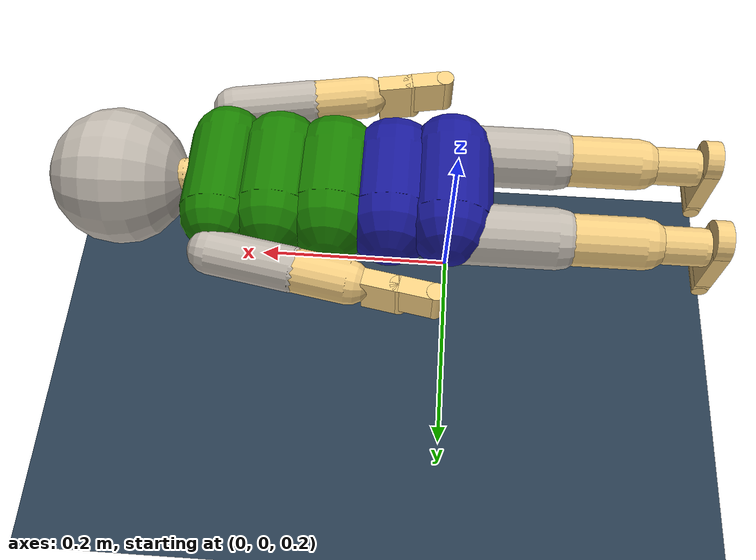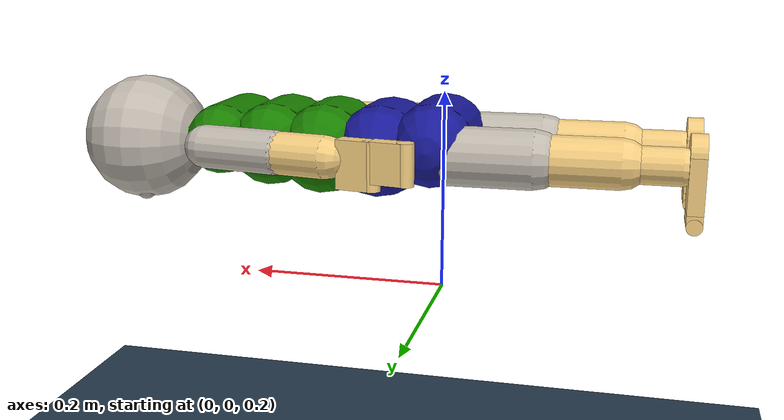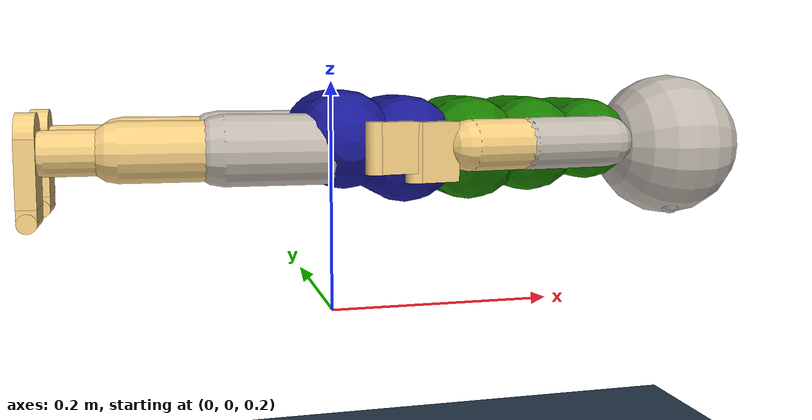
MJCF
<mujoco model="MIMo">

    <compiler inertiafromgeom="true" angle="degree"/>
    <option timestep="0.005" iterations="50" tolerance="1e-10" solver="Newton" jacobian="dense" cone="elliptic" impratio="1.0"/>
    <size nconmax="1000" njmax="5000" nstack="10000000" nuser_cam="3"/>

    <visual>
        <map force="0.1" zfar="30" znear="0.005"/>
        <rgba haze="0.15 0.25 0.35 1"/>
        <quality shadowsize="4096"/>
        <global offwidth="800" offheight="800"/>
    </visual>

    <asset>

        <texture type="skybox" builtin="gradient" rgb1="0.3 0.5 0.7" rgb2="0 0 0" width="512" height="512"/>

        <texture name="texplane" type="2d" builtin="checker" rgb1=".2 .3 .4" rgb2=".1 0.15 0.2" width="512" height="512" mark="cross" markrgb=".8 .8 .8"/>
        <material name="matplane" reflectance="0.3" texture="texplane" texrepeat="1 1" texuniform="true"/>

        <material name="orange" rgba="0.9 0.4 0 1" specular=".2" shininess=".8"/>

    </asset>

	<size nuser_actuator="3" />

	<default>
		<default class="mimo">
        	<joint limited="true" damping=".1" stiffness=".1" armature="0.001" solimplimit="0.98 0.99 0.001 .5 1" solreflimit="0.02 1" />
        	<geom condim="3" material="skin" friction="1 0.005 0.0002" solimp="0.95 0.99 0.001 0.5 1" solref="0.005 1" />
        	<motor ctrlrange="-1 1" ctrllimited="true" forcelimited="true" />
		</default>
    </default>

    <asset>

		<texture name="tex_head_default" type="cube" fileright="tex/head_front.png" fileleft="tex/head_back.png" fileup="tex/head_left.png" filedown="tex/head_right.png" filefront="tex/head_top.png" rgb1="0.95 .8 .5" />
		<texture name="tex_head_happy" type="cube" fileright="tex/head_front_happy.png" fileleft="tex/head_back.png" fileup="tex/head_left.png" filedown="tex/head_right.png" filefront="tex/head_top.png" rgb1="0.95 .8 .5" />
		<texture name="tex_head_sad" type="cube" fileright="tex/head_front_sad.png" fileleft="tex/head_back.png" fileup="tex/head_left.png" filedown="tex/head_right.png" filefront="tex/head_top.png" rgb1="0.95 .8 .5" />
		<texture name="tex_head_surprised" type="cube" fileright="tex/head_front_surprised.png" fileleft="tex/head_back.png" fileup="tex/head_left.png" filedown="tex/head_right.png" filefront="tex/head_top.png" rgb1="0.95 .8 .5" />
		<texture name="tex_head_angry" type="cube" fileright="tex/head_front_angry.png" fileleft="tex/head_back.png" fileup="tex/head_left.png" filedown="tex/head_right.png" filefront="tex/head_top.png" rgb1="0.95 .8 .5" />
		<texture name="tex_head_disgusted" type="cube" fileright="tex/head_front_disgusted.png" fileleft="tex/head_back.png" fileup="tex/head_left.png" filedown="tex/head_right.png" filefront="tex/head_top.png" rgb1="0.95 .8 .5" />
		<texture name="tex_head_scared" type="cube" fileright="tex/head_front_scared.png" fileleft="tex/head_back.png" fileup="tex/head_left.png" filedown="tex/head_right.png" filefront="tex/head_top.png" rgb1="0.95 .8 .5" />
		<texture name="tex_top_sleeve" type="cube" fileright="tex/sleeve_right.png" fileleft="tex/sleeve_left.png" fileup="tex/sleeve_up.png" filedown="tex/sleeve_down.png" filefront="tex/sleeve_front.png" fileback="tex/sleeve_back.png" rgb1="0.95 .8 .5" />
		<texture name="tex_pants_leg" type="cube" fileright="tex/leg_right.png" fileleft="tex/leg_left.png" fileup="tex/leg_up.png" filedown="tex/leg_down.png" filefront="tex/leg_front.png" fileback="tex/leg_back.png" rgb1="0.95 .8 .5" />
		<texture name="tex_eye_left" type="cube" fileright="tex/eye_pupil_left.png" rgb1="1 1 1" />
		<texture name="tex_eye_right" type="cube" fileright="tex/eye_pupil_right.png" rgb1="1 1 1" />

		<material name="skin" rgba="0.95 0.8 0.5 1" specular=".15" shininess=".7" />
		<material name="buttons" rgba=".05 .05 .05 1" specular=".9" shininess=".9" />
		<material name="head" texture="tex_head_default" texuniform="true" specular=".0" shininess=".0" />
		<material name="top_up" rgba=".1 .5 0.0 1" specular=".0" shininess=".0" />
		<material name="top_middle" rgba=".1 .5 0.0 1" specular=".0" shininess=".0" />
		<material name="top_down" rgba=".1 .5 0.0 1" specular=".0" shininess=".0" />
		<material name="top_sleeve" texture="tex_top_sleeve" texuniform="true" specular=".0" shininess=".0" />
		<material name="pants_up" rgba="0.1 0.1 0.6 1" specular=".0" shininess=".0" />
		<material name="pants_down" rgba="0.1 0.1 0.6 1" specular=".0" shininess=".0" />
		<material name="pants_leg" texture="tex_pants_leg" texuniform="true" specular=".0" shininess=".0" />
		<material name="eye_left" texture="tex_eye_left" texuniform="true" specular=".0" shininess=".0" />
		<material name="eye_right" texture="tex_eye_right" texuniform="true" specular=".0" shininess=".0" />

    </asset>

	<contact>
		<pair geom1="lb" geom2="ub1" condim="1" />
		<exclude body1="left_eye" body2="upper_body" />
		<exclude body1="right_eye" body2="upper_body" />
	</contact>

	<tendon>
		<fixed class="mimo" name="hip_bend" limited="true" range="-.01 .01">
			<joint joint="robot:hip_bend1" coef="1" />
			<joint joint="robot:hip_bend2" coef="-1" />
		</fixed>
		<fixed class="mimo" name="hip_rotation" limited="true" range="-.01 .01">
			<joint joint="robot:hip_rot1" coef="1" />
			<joint joint="robot:hip_rot2" coef="-1" />
		</fixed>
		<fixed class="mimo" name="hip_lean" limited="true" range="-.01 .01">
			<joint joint="robot:hip_lean1" coef="1" />
			<joint joint="robot:hip_lean2" coef="-.5" />
		</fixed>
		<fixed class="mimo" name="head_limits1" limited="true" range="-2.1 2.1">
			<joint joint="robot:head_swivel" coef="1" />
			<joint joint="robot:head_tilt_side" coef="1" />
		</fixed>
		<fixed class="mimo" name="head_limits2" limited="true" range="-2.1 2.1">
			<joint joint="robot:head_tilt" coef="1" />
			<joint joint="robot:head_tilt_side" coef="1" />
		</fixed>
		<fixed class="mimo" name="head_limits3" limited="true" range="-2.1 2.1">
			<joint joint="robot:head_swivel" coef="1" />
			<joint joint="robot:head_tilt" coef="1" />
		</fixed>
		<fixed class="mimo" name="head_limits1_sym" limited="true" range="-2.1 2.1">
			<joint joint="robot:head_swivel" coef="1" />
			<joint joint="robot:head_tilt_side" coef="-1" />
		</fixed>
		<fixed class="mimo" name="head_limits2_sym" limited="true" range="-2.1 2.1">
			<joint joint="robot:head_tilt" coef="1" />
			<joint joint="robot:head_tilt_side" coef="-1" />
		</fixed>
		<fixed class="mimo" name="head_limits3_sym" limited="true" range="-2.1 2.1">
			<joint joint="robot:head_swivel" coef="1" />
			<joint joint="robot:head_tilt" coef="-1" />
		</fixed>
	</tendon>

	<sensor>
		<accelerometer name="vestibular_acc" site="vestibular" />
		<gyro name="vestibular_gyro" site="vestibular" />

		<torque name="proprio:neck" site="torque_neck" />
		<torque name="proprio:left_eye" site="torque_left_eye" />
		<torque name="proprio:right_eye" site="torque_right_eye" />

		<torque name="proprio:chest" site="torque_chest" />
		<torque name="proprio:trunk_upper" site="torque_ub" />
		<torque name="proprio:trunk_lower" site="torque_lb" />

		<torque name="proprio:right_shoulder" site="torque_right_shoulder" />
		<torque name="proprio:right_elbow" site="torque_right_elbow" />
		<torque name="proprio:right_wrist" site="torque_right_wrist" />
		<torque name="proprio:right_fingers" site="torque_right_fingers" />

		<torque name="proprio:left_shoulder" site="torque_left_shoulder" />
		<torque name="proprio:left_elbow" site="torque_left_elbow" />
		<torque name="proprio:left_wrist" site="torque_left_wrist" />
		<torque name="proprio:left_fingers" site="torque_left_fingers" />

		<torque name="proprio:right_hip" site="torque_right_hip" />
		<torque name="proprio:right_knee" site="torque_right_knee" />
		<torque name="proprio:right_ankle" site="torque_right_ankle" />
		<torque name="proprio:right_toes" site="torque_right_toes" />

		<torque name="proprio:left_hip" site="torque_left_hip" />
		<torque name="proprio:left_knee" site="torque_left_knee" />
		<torque name="proprio:left_ankle" site="torque_left_ankle" />
		<torque name="proprio:left_toes" site="torque_left_toes" />

		<framelinvel name="kobayashi:left_wrist" objtype="site" objname="KOBAYASHI_LWrist" />
		<framelinvel name="kobayashi:right_wrist" objtype="site" objname="KOBAYASHI_RWrist" />
		<framelinvel name="kobayashi:left_ankle" objtype="site" objname="KOBAYASHI_LAnkle" />
		<framelinvel name="kobayashi:right_ankle" objtype="site" objname="KOBAYASHI_RAnkle" />
		<framelinvel name="kobayashi:torso" objtype="site" objname="KOBAYASHI_Torso" />
	</sensor>

  <actuator>
		<motor class="mimo" name="act:hip_bend" joint="robot:hip_bend1" gear="6.605043927287015" forcerange="-1 .765" user=".8574 32.93 22.97" />
		<motor class="mimo" name="act:hip_twist" joint="robot:hip_rot1" gear="2.2661918200427094" forcerange="-1 1" user="1.699 8.136 8.136" />
		<motor class="mimo" name="act:hip_lean" joint="robot:hip_lean1" gear="4.5261406874131245" forcerange="-1 1" user="1.278 1.264 1.264" />

		<motor class="mimo" name="act:chest_twist" joint="robot:chest_rot" gear="0.22474629620258277" forcerange="-1 1" user="1.699 8.136 8.136" />
		<motor class="mimo" name="act:chest_lean" joint="robot:chest_lean" gear="0.44949259240516554" forcerange="-1 1" user="1.278 1.264 1.264" />

		<motor class="mimo" name="act:head_swivel" joint="robot:head_swivel" gear="1.257937689075825" forcerange="-1 1" user=".6665 24.87 24.87" />
		<motor class="mimo" name="act:head_tilt" joint="robot:head_tilt" gear="2.306219096639012" forcerange="-1 .55" user=".9338 31.39 16.86" />
		<motor class="mimo" name="act:head_tilt_side" joint="robot:head_tilt_side" gear="1.257937689075825" forcerange="-1 1" user="1.068 15.69 15.69" />

		<motor class="mimo" name="act:left_eye_horizontal" joint="robot:left_eye_horizontal" gear="0.0037738130672274753" forcerange="-1 1" user="5.110 .03025 .03025" />
		<motor class="mimo" name="act:left_eye_vertical" joint="robot:left_eye_vertical" gear="0.0037738130672274753" forcerange="-1 1" user="6.179 .02619 .02771" />
		<motor class="mimo" name="act:left_eye_torsional" joint="robot:left_eye_torsional" gear="0.002585760805322529" forcerange="-1 1" user="25.03 .003686 .003686" />
		<motor class="mimo" name="act:right_eye_horizontal" joint="robot:right_eye_horizontal" gear="0.0037738130672274753" forcerange="-1 1" user="5.110 .03025 .03025" />
		<motor class="mimo" name="act:right_eye_vertical" joint="robot:right_eye_vertical" gear="0.0037738130672274753" forcerange="-1 1" user="6.179 .02619 .02771" />
		<motor class="mimo" name="act:right_eye_torsional" joint="robot:right_eye_torsional" gear="0.002585760805322529" forcerange="-1 1" user="25.03 .003686 .003686" />

		<motor class="mimo" name="act:right_shoulder_horizontal" joint="robot:right_shoulder_horizontal" gear="1.0789259271635896" forcerange="-1 1" user="1.811 18.80 15.30" />
		<motor class="mimo" name="act:right_shoulder_abduction" joint="robot:right_shoulder_ad_ab" gear="2.3976131714746436" forcerange="-.6875 1" user=".8793 44.17 69.23" />
		<motor class="mimo" name="act:right_shoulder_internal" joint="robot:right_shoulder_rotation" gear="1.498508232171652" forcerange="-1 .64" user="1.498 25.09 17.10" />
		<motor class="mimo" name="act:right_elbow" joint="robot:right_elbow" gear="2.183613755671895" forcerange="-1 .83" user="1.566 35.43 27.04" />
		<motor class="mimo" name="act:right_wrist_rotation" joint="robot:right_hand1" gear="0.3778093026575745" forcerange="-1 1" user="1.513 7.842 7.842" />
		<motor class="mimo" name="act:right_wrist_flexion" joint="robot:right_hand2" gear="0.6692621932791321" forcerange="-1 .57" user="1.455 13.66 7.874" />
		<motor class="mimo" name="act:right_wrist_ulnar" joint="robot:right_hand3" gear="0.5127411964638511" forcerange="-.87 1" user="2.254 5.155 6.021" />
		<motor class="mimo" name="act:right_fingers" joint="robot:right_fingers" gear="0.3724120269053235" forcerange="-1 .33" user="3.019 6.854 2.551" />

		<motor class="mimo" name="act:left_shoulder_horizontal" joint="robot:left_shoulder_horizontal" gear="1.0789259271635896" forcerange="-1 1" user="1.811 18.80 15.30" />
		<motor class="mimo" name="act:left_shoulder_abduction" joint="robot:left_shoulder_ad_ab" gear="2.3976131714746436" forcerange="-.6875 1" user=".8793 44.17 69.23" />
		<motor class="mimo" name="act:left_shoulder_internal" joint="robot:left_shoulder_rotation" gear="1.498508232171652" forcerange="-1 .64" user="1.498 25.09 17.10" />
		<motor class="mimo" name="act:left_elbow" joint="robot:left_elbow" gear="2.183613755671895" forcerange="-1 .83" user="1.566 35.43 27.04" />
		<motor class="mimo" name="act:left_wrist_rotation" joint="robot:left_hand1" gear="0.3778093026575745" forcerange="-1 1" user="1.513 7.842 7.842" />
		<motor class="mimo" name="act:left_wrist_flexion" joint="robot:left_hand2" gear="0.6692621932791321" forcerange="-1 .57" user="1.455 13.66 7.874" />
		<motor class="mimo" name="act:left_wrist_ulnar" joint="robot:left_hand3" gear="0.5127411964638511" forcerange="-.87 1" user="2.254 5.155 6.021" />
		<motor class="mimo" name="act:left_fingers" joint="robot:left_fingers" gear="0.3724120269053235" forcerange="-1 .33" user="3.019 6.854 2.551" />

		<motor class="mimo" name="act:right_hip_flex" joint="robot:right_hip1" gear="3.566310901480178" forcerange="-1 1" user="1.083 71.25 92.49" />
		<motor class="mimo" name="act:right_hip_abduction" joint="robot:right_hip2" gear="2.781722503154539" forcerange="-1 1" user="1.488 24.81 29.20" />
		<motor class="mimo" name="act:right_hip_rotation" joint="robot:right_hip3" gear="1.5780925739049787" forcerange="-.75 1" user="1.860 12.32 15.78" />
		<motor class="mimo" name="act:right_knee" joint="robot:right_knee" gear="5.581943908061321" forcerange="-.65 1" user="1.450 63.16 89.27" />
		<motor class="mimo" name="act:right_foot_flexion" joint="robot:right_foot1" gear="1.691794816845441" forcerange="-1 .5" user="1.430 21.34 11.87" />
		<motor class="mimo" name="act:right_foot_inversion" joint="robot:right_foot2" gear="0.5191751289790243" forcerange="-.91 1" user="1.988 4.184 4.645" />
		<motor class="mimo" name="act:right_foot_rotation" joint="robot:right_foot3" gear="0.5370777196334734" forcerange="-1 1" user="2.688 3.868 3.625" />
		<motor class="mimo" name="act:right_toes" joint="robot:right_toes" gear="0.14769637289920517" forcerange="-1 .3" user="1.290 2.947 .8440" />

		<motor class="mimo" name="act:left_hip_flex" joint="robot:left_hip1" gear="3.566310901480178" forcerange="-1 1" user="1.083 71.25 92.49" />
		<motor class="mimo" name="act:left_hip_abduction" joint="robot:left_hip2" gear="2.781722503154539" forcerange="-1 1" user="1.488 24.81 29.20" />
		<motor class="mimo" name="act:left_hip_rotation" joint="robot:left_hip3" gear="1.5780925739049787" forcerange="-.75 1" user="1.860 12.32 15.78" />
		<motor class="mimo" name="act:left_knee" joint="robot:left_knee" gear="5.581943908061321" forcerange="-.65 1" user="1.450 63.16 89.27" />
		<motor class="mimo" name="act:left_foot_flexion" joint="robot:left_foot1" gear="1.691794816845441" forcerange="-1 .5" user="1.430 21.34 11.87" />
		<motor class="mimo" name="act:left_foot_inversion" joint="robot:left_foot2" gear="0.5191751289790243" forcerange="-.91 1" user="1.988 4.184 4.645" />
		<motor class="mimo" name="act:left_foot_rotation" joint="robot:left_foot3" gear="0.5370777196334734" forcerange="-1 1" user="2.688 3.868 3.625" />
		<motor class="mimo" name="act:left_toes" joint="robot:left_toes" gear="0.14769637289920517" forcerange="-1 .3" user="1.290 2.947 .8440" />
	</actuator>

	<equality>
		<joint name="robot:hip_lean1" joint1="robot:hip_lean1" active="false" polycoef="0 1 0 0 0" />
		<joint name="robot:hip_rot1" joint1="robot:hip_rot1" active="false" polycoef="0 1 0 0 0" />
		<joint name="robot:hip_bend1" joint1="robot:hip_bend1" active="false" polycoef="0 1 0 0 0" />
		<joint name="robot:hip_lean2" joint1="robot:hip_lean2" active="false" polycoef="0 1 0 0 0" />
		<joint name="robot:hip_rot2" joint1="robot:hip_rot2" active="false" polycoef="0 1 0 0 0" />
		<joint name="robot:hip_bend2" joint1="robot:hip_bend2" active="false" polycoef="0 1 0 0 0" />
		<joint name="robot:head_swivel" joint1="robot:head_swivel" active="false" polycoef="0 1 0 0 0" />
		<joint name="robot:head_tilt" joint1="robot:head_tilt" active="false" polycoef="0 1 0 0 0" />
		<joint name="robot:head_tilt_side" joint1="robot:head_tilt_side" active="false" polycoef="0 1 0 0 0" />
		<joint name="robot:left_eye_horizontal" joint1="robot:left_eye_horizontal" active="false" polycoef="0 1 0 0 0" />
		<joint name="robot:left_eye_vertical" joint1="robot:left_eye_vertical" active="false" polycoef="0 1 0 0 0" />
		<joint name="robot:left_eye_torsional" joint1="robot:left_eye_torsional" active="false" polycoef="0 1 0 0 0" />
		<joint name="robot:right_eye_horizontal" joint1="robot:right_eye_horizontal" active="false" polycoef="0 1 0 0 0" />
		<joint name="robot:right_eye_vertical" joint1="robot:right_eye_vertical" active="false" polycoef="0 1 0 0 0" />
		<joint name="robot:right_eye_torsional" joint1="robot:right_eye_torsional" active="false" polycoef="0 1 0 0 0" />
		<joint name="robot:right_shoulder_horizontal" joint1="robot:right_shoulder_horizontal" active="false" polycoef="0 1 0 0 0" />
		<joint name="robot:right_shoulder_ad_ab" joint1="robot:right_shoulder_ad_ab" active="false" polycoef="0 1 0 0 0" />
		<joint name="robot:right_shoulder_rotation" joint1="robot:right_shoulder_rotation" active="false" polycoef="0 1 0 0 0" />
		<joint name="robot:right_elbow" joint1="robot:right_elbow" active="false" polycoef="0 1 0 0 0" />
		<joint name="robot:right_hand1" joint1="robot:right_hand1" active="false" polycoef="0 1 0 0 0" />
		<joint name="robot:right_hand2" joint1="robot:right_hand2" active="false" polycoef="0 1 0 0 0" />
		<joint name="robot:right_hand3" joint1="robot:right_hand3" active="false" polycoef="0 1 0 0 0" />
		<joint name="robot:right_fingers" joint1="robot:right_fingers" active="false" polycoef="0 1 0 0 0" />
		<joint name="robot:left_shoulder_horizontal" joint1="robot:left_shoulder_horizontal" active="false" polycoef="0 1 0 0 0" />
		<joint name="robot:left_shoulder_ad_ab" joint1="robot:left_shoulder_ad_ab" active="false" polycoef="0 1 0 0 0" />
		<joint name="robot:left_shoulder_rotation" joint1="robot:left_shoulder_rotation" active="false" polycoef="0 1 0 0 0" />
		<joint name="robot:left_elbow" joint1="robot:left_elbow" active="false" polycoef="0 1 0 0 0" />
		<joint name="robot:left_hand1" joint1="robot:left_hand1" active="false" polycoef="0 1 0 0 0" />
		<joint name="robot:left_hand2" joint1="robot:left_hand2" active="false" polycoef="0 1 0 0 0" />
		<joint name="robot:left_hand3" joint1="robot:left_hand3" active="false" polycoef="0 1 0 0 0" />
		<joint name="robot:left_fingers" joint1="robot:left_fingers" active="false" polycoef="0 1 0 0 0" />
		<joint name="robot:right_hip1" joint1="robot:right_hip1" active="false" polycoef="0 1 0 0 0" />
		<joint name="robot:right_hip2" joint1="robot:right_hip2" active="false" polycoef="0 1 0 0 0" />
		<joint name="robot:right_hip3" joint1="robot:right_hip3" active="false" polycoef="0 1 0 0 0" />
		<joint name="robot:right_knee" joint1="robot:right_knee" active="false" polycoef="0 1 0 0 0" />
		<joint name="robot:right_foot1" joint1="robot:right_foot1" active="false" polycoef="0 1 0 0 0" />
		<joint name="robot:right_foot2" joint1="robot:right_foot2" active="false" polycoef="0 1 0 0 0" />
		<joint name="robot:right_foot3" joint1="robot:right_foot3" active="false" polycoef="0 1 0 0 0" />
		<joint name="robot:right_toes" joint1="robot:right_toes" active="false" polycoef="0 1 0 0 0" />
		<joint name="robot:left_hip1" joint1="robot:left_hip1" active="false" polycoef="0 1 0 0 0" />
		<joint name="robot:left_hip2" joint1="robot:left_hip2" active="false" polycoef="0 1 0 0 0" />
		<joint name="robot:left_hip3" joint1="robot:left_hip3" active="false" polycoef="0 1 0 0 0" />
		<joint name="robot:left_knee" joint1="robot:left_knee" active="false" polycoef="0 1 0 0 0" />
		<joint name="robot:left_foot1" joint1="robot:left_foot1" active="false" polycoef="0 1 0 0 0" />
		<joint name="robot:left_foot2" joint1="robot:left_foot2" active="false" polycoef="0 1 0 0 0" />
		<joint name="robot:left_foot3" joint1="robot:left_foot3" active="false" polycoef="0 1 0 0 0" />
		<joint name="robot:left_toes" joint1="robot:left_toes" active="false" polycoef="0 1 0 0 0" />
	</equality>

    <equality>
        <weld body1="left_eye" body2="head"/>
        <weld body1="right_eye" body2="head"/>
    </equality>

    <worldbody>

        <geom name="floor" pos="0 0 0" size="0 0 .25" type="plane" material="matplane" condim="3"/>

        <light directional="false" diffuse=".4 .4 .4" specular="0 0 0" pos="0 0 10" dir="0 0 -1" castshadow="false"/>
        <light mode="targetbodycom" target="upper_body" directional="false" diffuse=".75 .75 .75" specular="0.3 0.3 0.3" pos="3 0 5" dir="0 0 -1"/>

        <body name="mimo_location" pos="0 0 0.35" euler="0 90 0">
            <freejoint name="mimo_location"/>

	<body childclass="mimo" name="hip" pos="0 0 0">

		<geom name="lb" type="capsule" size="0.041023991945106364 0.03675065945082445 0.0" mass="0.7231836375585325" material="pants_down" pos="-0.002 0.0 0.0042733324942819135" euler="90 0 0" />
		<site name="lowerBody_center" type="sphere" size=".01 .01 .01" pos="0 0 0" />
		<site name="BODY_25:MidHip" type="sphere" size=".005" pos="0.005 0.0 -0.007" rgba="0 0 0 1" />
		<body name="lower_body" pos="0.002 0.0 0.06495465391308508">
			<joint name="robot:hip_lean1" type="hinge" pos="0.0 0.0 -0.04529732443938829" axis="1 0 0" range="-14 14" stiffness="3.38" damping="0.77" frictionloss=".049" armature="0.01" />
			<joint name="robot:hip_rot1" type="hinge" pos="0.0 0.0 -0.04529732443938829" axis="0 0 1" range="-18 18" stiffness="1.45" damping="0.29" frictionloss=".018" armature="0.01" />
			<joint name="robot:hip_bend1" type="hinge" pos="0.0 0.0 -0.04529732443938829" axis="0 1 0" range="-17 30.5" stiffness="2.20" damping="0.84" frictionloss="0.040" armature="0.01" />
			<site name="torque_lb" type="sphere" size="0.01" pos="0 0 0" group="4" />
			<geom name="cb" type="capsule" size="0.04529732443938829 0.029913327459973396 0.0" mass="0.8268790814453357" material="pants_up" contype="0" pos="0.005 0.0 -0.006837331990851062" euler="90 0 0" />

			<body name="upper_body" pos="-0.002 0.0 0.07777465139593084">

				<site name="KOBAYASHI_Torso" type="sphere" size="0.01" pos=".044442657940531906 0 0.044442657940531906" rgba="1 0 0 0" />
				<joint name="robot:hip_lean2" type="hinge" pos="0.0 0.0 -0.044442657940531906" axis="1 0 0" range="-27 27" stiffness="1.69" damping="0.38" frictionloss=".024" armature="0.01" />
				<joint name="robot:hip_rot2" type="hinge" pos="0.0 0.0 -0.044442657940531906" axis="0 0 1" range="-18 18" stiffness="1.45" damping="0.29" frictionloss=".018" armature="0.01" />
				<joint name="robot:hip_bend2" type="hinge" pos="0.0 0.0 -0.044442657940531906" axis="0 1 0" range="-17 30.5" stiffness="2.20" damping="0.84" frictionloss="0.040" armature="0.01" />
				<site name="torque_ub" type="sphere" size="0.01" pos="0 0 0" group="4" />
				<geom name="ub1" type="capsule" size="0.044442657940531906 0.029913327459973393 0.0" mass="0.6793581097990293" material="top_down" pos="0.007 0.0 -0.027349327963404252" euler="90 0 0" />
				<geom name="ub2" type="capsule" size="0.04102399194510638 0.03333199345539892 0.0" mass="0.5930180743412037" material="top_middle" pos="0.004 0.0 0.025639994965691484" euler="90 0 0" />
				<geom name="neck" type="capsule" size="0.01630632982473086 1e-06 0.0" mass="0.0" material="skin" pos="0.0 0.0 0.11196231135018615" euler="0 0 0" />

				<body name="chest" pos="0.0 0.0 0.07691998489707445">
					<site name="BODY_25:Neck" type="sphere" size=".005 .005 .005" pos="0.0 0.0 0.0" rgba="0 0 0 1" />
					<joint name="robot:chest_lean" type="hinge" pos="0 0 0" axis="1 0 0" range="-9 9" stiffness="1.69" damping="0.38" frictionloss=".024" armature="0.01" />
					<joint name="robot:chest_rot" type="hinge" pos="0 0 0" axis="0 0 1" range="-18 18" stiffness="1.45" damping="0.29" frictionloss=".018" armature="0.01" />
					<site name="torque_chest" type="sphere" size="0.01" pos="0 0 0" group="4" />
					<geom name="ub3" type="capsule" size="0.0350413264531117 0.04016932544624999 0.0" mass="0.45055389435945553" material="top_up" pos="0 0 0" euler="90 0 0" />

					<body name="right_upper_arm" pos="0.0 -0.0805243102009205 0.0" euler="170 0 0">

						<site name="BODY_25:RShoulder" type="sphere" size=".005 .005 .005" pos="0.0 0.0 0.0" rgba="0 0 0 1" />
						<joint name="robot:right_shoulder_horizontal" type="hinge" pos="0 0 0" axis="0 1 -4" range="-28 118" stiffness=".09" damping=".05" frictionloss=".0009" armature="0.004" />
						<joint name="robot:right_shoulder_ad_ab" type="hinge" pos="0 0 0" axis="-1 0 0" range="-84 183" stiffness=".11" damping=".10" frictionloss=".0014" armature="0.004" />
						<joint name="robot:right_shoulder_rotation" type="hinge" pos="0 0 0" axis="0 0 -1" range="-99 67" stiffness=".12" damping=".07" frictionloss=".0008" armature="0.004" />
						<site name="torque_right_shoulder" type="sphere" size="0.01" pos="0 0 0" group="4" />
						<geom name="right_uarm1" type="capsule" material="top_sleeve" size="0.02125463320623525 0.03902191360953018 0.0" mass="0.16087984380594858" pos="0.0 0.0 0.03902191360953018" euler="0 0 0" />
						<body name="right_lower_arm" pos="0.0 -0.0 0.07804382721906036" euler="0 0 0">

							<site name="KOBAYASHI_RWrist" type="sphere" size=".01" pos="0 0.02244 .05192" rgba="1 0 0 0" />
							<site name="BODY_25:RElbow" type="sphere" size=".005 .005 .005" pos="0.0 0.0 0.0" rgba="0 0 0 1" />
							<joint name="robot:right_elbow" type="hinge" pos="0 0 0" axis="0 -1 0" springref="-20" range="-146 5" stiffness=".13" damping=".11" frictionloss=".030" armature="0.002" />
							<site name="torque_right_elbow" type="sphere" size="0.01" pos="0 0 0" group="4" />
							<geom name="right_larm" type="capsule" size="0.020588983759954833 0.025886995720752957 0.0" mass="0.11239545247944503" pos="0.0 0.0 0.025886995720752957" />
							<body name="right_hand" pos="0.0 -0.0 0.06490287466522768" euler="0 0 0">
								<site name="BODY_25:RWrist" type="sphere" size=".005 .005 .005" pos="0.0 0.0 0.0" />
								<joint name="robot:right_hand1" type="hinge" pos="0 0 0" axis="0 0 -1" springref="-20" range="-90 90" stiffness=".22" damping=".03" frictionloss=".007" armature="0.001" />
								<joint name="robot:right_hand2" type="hinge" pos="0 0 0" axis="-1 0 0" range="-92 86" stiffness=".33" damping=".11" frictionloss=".007" armature="0.001" />
								<joint name="robot:right_hand3" type="hinge" pos="0 0 0" axis="0 1 0" range="-53 48" stiffness=".38" damping=".11" frictionloss=".007" armature="0.001" />
								<site name="torque_right_wrist" type="sphere" size="0.01" pos="0 0 0" group="4" />
								<geom name="geom:right_hand1" type="box" size="0.02329150498466719 0.008188901268977741 0.016539450460477067" mass="0.023289244870963344" pos="0.004094450634488871 0.0 0.016539450460477067" />
								<geom name="geom:right_hand2" type="cylinder" size="0.008388901268977742 0.02329150498466719 0.0" mass="0.009078729781313867" pos="0.004094450634488871 0.0 0.033078900920954134" euler="0 90 0" />
								<body name="right_fingers" pos="0.0 -0.0 0.033078900920954134">
									<joint name="robot:right_fingers" type="hinge" pos="0 0 0" axis="-1 0 0" springref="-40" range="-160 8" stiffness=".017" damping=".018" frictionloss=".0023" armature="0.0001" />
									<site name="torque_right_fingers" type="sphere" size="0.01" pos="0 0 0" group="4" />
									<geom name="geom:right_fingers1" type="box" size="0.01973765004957878 0.008188901268977741 0.016459933871724775" mass="0.019695493804533965" pos="0.0 0.0 0.016459933871724775" friction="5 0.02 0.01" />
									<geom name="geom:right_fingers2" type="cylinder" size="0.008388901268977742 0.01993765004957878 0.0" mass="0.007757393103712995" pos="0.0 0.0 0.03291986774344955" euler="0 90 0" friction="5 0.02 0.01" />
								</body>
							</body>
						</body>
					</body>

					<body name="left_upper_arm" pos="0.0 0.0805243102009205 0.0" euler="-170 0 0">

						<site name="BODY_25:LShoulder" type="sphere" size=".005 .005 .005" pos="0.0 0.0 0.0" rgba="0 0 0 1" />
						<joint name="robot:left_shoulder_horizontal" type="hinge" pos="0 0 0" axis="0 1 4" range="-28 118" stiffness=".09" damping=".05" frictionloss=".0009" armature="0.004" />
						<joint name="robot:left_shoulder_ad_ab" type="hinge" pos="0 0 0" axis="1 0 0" range="-84 183" stiffness=".11" damping=".10" frictionloss=".0014" armature="0.004" />
						<joint name="robot:left_shoulder_rotation" type="hinge" pos="0 0 0" axis="0 0 1" range="-99 67" stiffness=".12" damping=".07" frictionloss=".0008" armature="0.004" />
						<site name="torque_left_shoulder" type="sphere" size="0.01" pos="0 0 0" group="4" />
						<geom name="left_uarm1" type="capsule" material="top_sleeve" size="0.02125463320623525 0.03902191360953018 0.0" mass="0.16087984380594858" pos="0.0 0.0 0.03902191360953018" euler="0 0 0" />
						<body name="left_lower_arm" pos="0.0 0.0 0.07804382721906036" euler="0 0 0">

							<site name="KOBAYASHI_LWrist" type="sphere" size=".01" pos="0 -0.02244 .05192" rgba="1 0 0 0" />
							<site name="BODY_25:LElbow" type="sphere" size=".005 .005 .005" pos="0.0 0.0 0.0" rgba="0 0 0 1" />
							<joint name="robot:left_elbow" type="hinge" pos="0 0 0" axis="0 -1 0" springref="-20" range="-146 5" stiffness=".13" damping=".11" frictionloss=".030" armature="0.002" />
							<site name="torque_left_elbow" type="sphere" size="0.01" pos="0 0 0" group="4" />
							<geom name="left_larm" type="capsule" size="0.020588983759954833 0.025886995720752957 0.0" mass="0.11239545247944503" pos="0.0 0.0 0.025886995720752957" />
							<body name="left_hand" pos="0.0 0.0 0.06490287466522768" euler="0 0 0">
								<site name="BODY_25:LWrist" type="sphere" size=".005 .005 .005" pos="0.0 0.0 0.0" rgba="0 0 0 1" />
								<joint name="robot:left_hand1" type="hinge" pos="0 0 0" axis="0 0 1" springref="-20" range="-90 90" stiffness=".22" damping=".03" frictionloss=".007" armature="0.001" />
								<joint name="robot:left_hand2" type="hinge" pos="0 0 0" axis="1 0 0" range="-92 86" stiffness=".33" damping=".11" frictionloss=".007" armature="0.001" />
								<joint name="robot:left_hand3" type="hinge" pos="0 0 0" axis="0 1 0" range="-53 48" stiffness=".38" damping=".11" frictionloss=".007" armature="0.001" />
								<site name="torque_left_wrist" type="sphere" size="0.01" pos="0 0 0" group="4" />
								<geom name="geom:left_hand1" type="box" size="0.02329150498466719 0.008188901268977741 0.016539450460477067" mass="0.023289244870963344" pos="0.004094450634488871 0.0 0.016539450460477067" />
								<geom name="geom:left_hand2" type="cylinder" size="0.008388901268977742 0.02329150498466719 0.0" mass="0.009078729781313867" pos="0.004094450634488871 0.0 0.033078900920954134" euler="0 90 0" />
								<body name="left_fingers" pos="0.0 0.0 0.033078900920954134">
									<joint name="robot:left_fingers" type="hinge" pos="0 0 0" axis="1 0 0" springref="-40" range="-160 8" stiffness=".017" damping=".018" frictionloss=".0023" armature="0.0001" />
									<site name="torque_left_fingers" type="sphere" size="0.01" pos="0 0 0" group="4" />
									<geom name="geom:left_fingers1" type="box" size="0.01973765004957878 0.008188901268977741 0.016459933871724775" mass="0.019695493804533965" pos="0.0 0.0 0.016459933871724775" friction="5 0.02 0.01" />
									<geom name="geom:left_fingers2" type="cylinder" size="0.008388901268977742 0.01993765004957878 0.0" mass="0.007757393103712995" pos="0.0 0.0 0.03291986774344955" euler="0 90 0" friction="5 0.02 0.01" />
								</body>
							</body>
						</body>
					</body>
				</body>
				<body name="head" pos="0.0 0.0 0.11196331135018615">
					<geom name="head" type="sphere" size="0.06522531929892345 0.0 0.0" mass="1.240326561428763" material="head" pos="0.008874193101894348 0.0 0.06522531929892345" />
					<site name="vestibular" type="sphere" size="0.01" pos="0.01 0.0 0.06522531929892345" group="4" />
					<site name="torque_neck" type="sphere" size="0.01" pos="0 0 0" group="4" />
					<joint name="robot:head_swivel" type="hinge" pos="0 0 0" axis="0 0 1" range="-111 111" stiffness=".23" damping=".29" frictionloss=".018" armature="0.005" />
					<joint name="robot:head_tilt" type="hinge" pos="0.0 0.0 0.010870886549820576" axis="0 1 0" range="-70 81" stiffness=".45" damping=".53" frictionloss=".018" armature="0.005" />
					<joint name="robot:head_tilt_side" type="hinge" pos="0.0 0.0 0.021741773099641152" axis="1 0 0" range="-70 70" stiffness=".37" damping=".29" frictionloss=".018" armature="0.005" />
					<body name="left_eye" pos="0.06211935171326043 0.021741773099641152 0.059789876024013165">
						<site name="BODY_25:LEye" type="sphere" size=".005 .005 .005" pos="0.0 0.0 0.0" rgba="0 0 0 1" />
						<site name="torque_left_eye" type="sphere" size="0.01" pos="0 0 0" group="4" />
						<joint name="robot:left_eye_horizontal" type="hinge" pos="0 0 0" axis="0 0 1" range="-45 45" stiffness=".00065" damping=".00042" frictionloss=".000054" armature=".0002" />
						<joint name="robot:left_eye_vertical" type="hinge" pos="0 0 0" axis="0 -1 0" range="-47 33" stiffness=".00065" damping=".00042" frictionloss=".000054" armature=".0002" />
						<joint name="robot:left_eye_torsional" type="hinge" pos="0 0 0" axis="-1 0 0" range="-8 8" stiffness=".00267" damping=".00042" frictionloss=".000037" armature=".0002" />
						<geom name="geom:left_eye1" type="sphere" material="eye_left" size="0.00998346723963114 0.0 0.0" mass="0.004385310554972668" pos="0 0 0" />
						<camera name="eye_left" mode="fixed" fovy="60" pos="0.01125 0 0" euler="90 -90 0" />
					</body>
					<body name="right_eye" pos="0.06211935171326043 -0.021741773099641152 0.059789876024013165">
						<site name="BODY_25:REye" type="sphere" size=".005 .005 .005" pos="0.0 0.0 0.0" rgba="0 0 0 1" />
						<site name="torque_right_eye" type="sphere" size="0.01" pos="0 0 0" group="4" />
						<joint name="robot:right_eye_horizontal" type="hinge" pos="0 0 0" axis="0 0 -1" range="-45 45" stiffness=".00065" damping=".00042" frictionloss=".000054" armature=".0002" />
						<joint name="robot:right_eye_vertical" type="hinge" pos="0 0 0" axis="0 -1 0" range="-47 33" stiffness=".00065" damping=".00042" frictionloss=".000054" armature=".0002" />
						<joint name="robot:right_eye_torsional" type="hinge" pos="0 0 0" axis="1 0 0" range="-8 8" stiffness=".00267" damping=".00042" frictionloss=".000037" armature=".0002" />
						<geom name="geom:right_eye1" type="sphere" material="eye_right" size="0.00998346723963114 0.0 0.0" mass="0.004385310554972668" pos="0 0 0" />
						<camera name="eye_right" mode="fixed" fovy="60" pos="0.01125 0 0" euler="90 -90 0" />
					</body>
					<site name="BODY_25:Nose" type="sphere" size=".005" pos="0.06078822274797628 0.0 0.038602739993240404" rgba="0 0 0 1" />
					<site name="BODY_25:LEar" type="sphere" size=".005" pos="0.01 0.055463706886839666 0.051026610335892494" rgba="0 0 0 1" />
					<site name="BODY_25:REar" type="sphere" size=".005" pos="0.01 -0.055463706886839666 0.051026610335892494" rgba="0 0 0 1" />
				</body>
			</body>
		</body>

		<body name="right_upper_leg" pos="0.005 -0.043587991441675515 -0.007">

			<joint name="robot:right_hip1" type="hinge" pos="0 0 0" axis="0 1 0" springref="-10" range="-133 20" stiffness="1.72" damping="1.27" frictionloss=".08" armature=".005" />
			<joint name="robot:right_hip2" type="hinge" pos="0 0 0" axis="1 0 0" range="-51 17" stiffness="3.51" damping="1.99" frictionloss=".062" armature=".005" />
			<joint name="robot:right_hip3" type="hinge" pos="0 0 0" axis="0 0 -1" range="-32 41" stiffness="2.16" damping="0.75" frictionloss=".027" armature=".005" />
			<site name="torque_right_hip" type="sphere" size="0.01" pos="0 0 0" group="4" />
			<site name="BODY_25:RHip" type="sphere" size=".005 .005 .005" pos="0.0 0.0 0.0" rgba="0 0 0 1" />
			<geom name="geom:right_upper_leg1" type="capsule" material="pants_leg" contype="2" conaffinity="3" size="0.029178879199643137 0.043028114180424126 0.0" mass="0.35654193237548076" pos="0.0 0.0 -0.0444050138341977" euler="0 0 0" />
			<body name="right_lower_leg" pos="0.0 -0.0 -0.1013858725797104">

				<site name="KOBAYASHI_RAnkle" type="sphere" size=".01" pos="0.018060119747468583 0 -.10437" rgba="1 0 0 0" />
				<joint name="robot:right_knee" type="hinge" pos="0 0 0" axis="0 -1 0" springref="-30" range="-145 4" stiffness="1.63" damping="0.53" frictionloss=".065" armature=".003" />
				<site name="torque_right_knee" type="sphere" size="0.01" pos="0 0 0" group="4" />
				<site name="BODY_25:RKnee" type="sphere" size=".005 .005 .005" pos="0.0 0.0 0.0" rgba="0 0 0 1" />
				<geom name="geom:right_lower_leg1" type="capsule" size="0.02453601404253903 0.03302887733628934 0.0" mass="0.18649274596832874" pos="0.0 0.0 -0.03302887733628934" euler="0 0 0" />
				<geom name="geom:right_lower_leg2" type="capsule" size="0.018060119747468583 0.021018376486729582 0.0" mass="0.06752956164815183" pos="0.0 0.0 -0.09908663200886803" euler="0 0 0" />
				<body name="right_foot" pos="0.0 -0.0 -0.13211550934515737">
					<joint name="robot:right_foot1" type="hinge" pos="0.0 -0.0 0.011419696164405538" axis="0 -1 0" springref="-10" range="-63 32" stiffness="1.29" damping="0.6" frictionloss=".019" armature=".003" />
					<joint name="robot:right_foot2" type="hinge" pos="0.0 -0.0 0.011419696164405538" axis="1 0 0" range="-33 31" stiffness="0.96" damping="0.37" frictionloss=".011" armature=".0025" />
					<joint name="robot:right_foot3" type="hinge" pos="0.0 -0.0 0.011419696164405538" axis="0 0 1" range="-20 30" stiffness="1.15" damping="0.38" frictionloss=".012" armature=".002" />
					<site name="torque_right_ankle" type="sphere" size="0.01" pos="0 0 0" group="4" />
					<site name="BODY_25:RAnkle" type="sphere" size=".005" pos="0.0 0.0 0.011419696164405538" rgba="0 0 0 1" />
					<site name="BODY_25:RHeel" type="sphere" size=".005" pos="-0.026364743611897154 0.0 0.0" rgba="0 0 0 1" />
					<geom name="geom:right_foot1" type="cylinder" size="0.01941089091925938 0.0075131307762703586 0.0" mass="0.014845641691887838" pos="-0.012052454222581556 0.0 0.0" euler="0 0 0" />
					<geom name="geom:right_foot2" type="box" size="0.026364743611897154 0.01951089091925938 0.007613130776270359" mass="0.02618253883213183" pos="0.0143122893893156 0.0 0.0" euler="0 0 0" friction="2 0.02 0.01" />
					<geom name="geom:right_foot3" type="cylinder" size="0.0075131307762703586 0.01931089091925938 0.0" mass="0.005686452175627015" pos="0.04067703300121275 0.0 0.0" euler="90 0 0" friction="2 0.02 0.01" />
					<body name="right_toes" pos="0.04067703300121275 -0.0 0.0">
						<joint name="robot:right_toes" type="hinge" pos="0 0 0" axis="0 -1 0" range="-60 80" frictionloss=".005" armature=".0005" stiffness=".106" damping=".04" />
						<site name="torque_right_toes" type="sphere" size="0.01" pos="0 0 0" group="4" />
						<geom name="geom:right_toes1" type="box" size="0.00527294872237943 0.01941089091925938 0.0075131307762703586" mass="0.00483077339639827" pos="0.00527294872237943 0.0 0.0" euler="0 0 0" friction="2 0.02 0.01" />
						<geom name="geom:right_toes2" type="cylinder" size="0.007613130776270359 0.01951089091925938 0.0" mass="0.005545671526769992" pos="0.01054589744475886 0.0 0.0" euler="90 0 0" friction="2 0.02 0.01" />
						<site name="BODY_25:RBigToe" type="sphere" size=".005" pos="0.008286062278024819 0.009365227641244502 0.0" rgba="0 0 0 1" />
						<site name="BODY_25:RSmallToe" type="sphere" size=".005" pos="0.0075327838891134724 -0.009365227641244502 0.0" rgba="0 0 0 1" />
					</body>
				</body>
			</body>
		</body>

		<body name="left_upper_leg" pos="0.005 0.043587991441675515 -0.007">

			<site name="BODY_25:LHip" type="sphere" size=".005 .005 .005" pos="0.0 0.0 0.0" rgba="0 0 0 1" />
			<joint name="robot:left_hip1" type="hinge" pos="0 0 0" axis="0 1 0" springref="-10" range="-133 20" stiffness="1.72" damping="1.27" frictionloss=".08" armature=".005" />
			<joint name="robot:left_hip2" type="hinge" pos="0 0 0" axis="-1 0 0" range="-51 17" stiffness="3.51" damping="1.99" frictionloss=".062" armature=".005" />
			<joint name="robot:left_hip3" type="hinge" pos="0 0 0" axis="0 0 1" range="-32 41" stiffness="2.16" damping="0.75" frictionloss=".027" armature=".005" />
			<site name="torque_left_hip" type="sphere" size="0.01" pos="0 0 0" group="4" />
			<geom name="geom:left_upper_leg1" type="capsule" material="pants_leg" contype="2" conaffinity="3" size="0.029178879199643137 0.043028114180424126 0.0" mass="0.35654193237548076" pos="0.0 0.0 -0.0444050138341977" euler="0 0 0" />
			<body name="left_lower_leg" pos="0.0 0.0 -0.1013858725797104">

				<site name="KOBAYASHI_LAnkle" type="sphere" size=".01" pos="0.018060119747468583 0 -.10437" rgba="1 0 0 0" />
				<joint name="robot:left_knee" type="hinge" pos="0 0 0" axis="0 -1 0" springref="-30" range="-145 4" stiffness="1.63" damping="0.53" frictionloss=".065" armature=".003" />
				<site name="torque_left_knee" type="sphere" size="0.01" pos="0 0 0" group="4" />
				<site name="BODY_25:LKnee" type="sphere" size=".005" pos="0.0 0.0 0.0" rgba="0 0 0 1" />
				<geom name="geom:left_lower_leg1" type="capsule" size="0.02453601404253903 0.03302887733628934 0.0" mass="0.18649274596832874" pos="0.0 0.0 -0.03302887733628934" euler="0 0 0" />
				<geom name="geom:left_lower_leg2" type="capsule" size="0.018060119747468583 0.021018376486729582 0.0" mass="0.06752956164815183" pos="0.0 0.0 -0.09908663200886803" euler="0 0 0" />
				<body name="left_foot" pos="0.0 0.0 -0.13211550934515737">
					<joint name="robot:left_foot1" type="hinge" pos="0.0 0.0 0.011419696164405538" axis="0 -1 0" springref="-10" range="-63 32" stiffness="1.29" damping="0.6" frictionloss=".019" armature=".003" />
					<joint name="robot:left_foot2" type="hinge" pos="0.0 0.0 0.011419696164405538" axis="-1 0 0" range="-33 31" stiffness="0.96" damping="0.37" frictionloss=".011" armature=".0025" />
					<joint name="robot:left_foot3" type="hinge" pos="0.0 0.0 0.011419696164405538" axis="0 0 -1" range="-20 30" stiffness="1.15" damping="0.38" frictionloss=".012" armature=".002" />
					<site name="torque_left_ankle" type="sphere" size="0.01" pos="0 0 0" group="4" />
					<site name="BODY_25:LAnkle" type="sphere" size=".005" pos="0.0 0.0 0.011419696164405538" rgba="0 0 0 1" />
					<site name="BODY_25:LHeel" type="sphere" size=".005" pos="-0.026364743611897154 0.0 0.0" rgba="0 0 0 1" />
					<geom name="geom:left_foot1" type="cylinder" size="0.01941089091925938 0.0075131307762703586 0.0" mass="0.014845641691887838" pos="-0.012052454222581556 0.0 0.0" euler="0 0 0" />
					<geom name="geom:left_foot2" type="box" size="0.026364743611897154 0.01951089091925938 0.007613130776270359" mass="0.02618253883213183" pos="0.0143122893893156 0.0 0.0" euler="0 0 0" friction="2 0.02 0.01" />
					<geom name="geom:left_foot3" type="cylinder" size="0.0075131307762703586 0.01931089091925938 0.0" mass="0.005686452175627015" pos="0.04067703300121275 0.0 0.0" euler="90 0 0" friction="2 0.02 0.01" />
					<body name="left_toes" pos="0.04067703300121275 0.0 0.0">
						<joint name="robot:left_toes" type="hinge" pos="0 0 0" axis="0 -1 0" range="-60 80" frictionloss=".005" armature=".0005" stiffness=".106" damping=".04" />
						<site name="torque_left_toes" type="sphere" size="0.01" pos="0 0 0" group="4" />
						<geom name="geom:left_toes1" type="box" size="0.00527294872237943 0.01941089091925938 0.0075131307762703586" mass="0.00483077339639827" pos="0.00527294872237943 0.0 0.0" euler="0 0 0" friction="2 0.02 0.01" />
						<geom name="geom:left_toes2" type="cylinder" size="0.007613130776270359 0.01951089091925938 0.0" mass="0.005545671526769992" pos="0.01054589744475886 0.0 0.0" euler="90 0 0" friction="2 0.02 0.01" />
						<site name="BODY_25:LBigToe" type="sphere" size=".005" pos="0.008286062278024819 -0.009365227641244502 0.0" rgba="0 0 0 1" />
						<site name="BODY_25:LSmallToe" type="sphere" size=".005" pos="0.0075327838891134724 0.009365227641244502 0.0" rgba="0 0 0 1" />
					</body>
				</body>
			</body>
		</body>

	</body>

        </body>

        <camera name="corner" pos="3 -3 3" fovy="20" mode="targetbody" target="mimo_location"/>
        <camera name="top" pos="0 0 1.4" euler="0 0 -90" mode="fixed"/>
        <camera name="side1" pos="2 0 .5" euler="90 90 0" mode="fixed"/>
        <camera name="side2" pos="0 2 .5" euler="90 180 0" mode="fixed"/>
        <camera name="closeup" pos="0.25 -0.25 1" mode="targetbody" target="mimo_location"/>

    </worldbody>

</mujoco>
